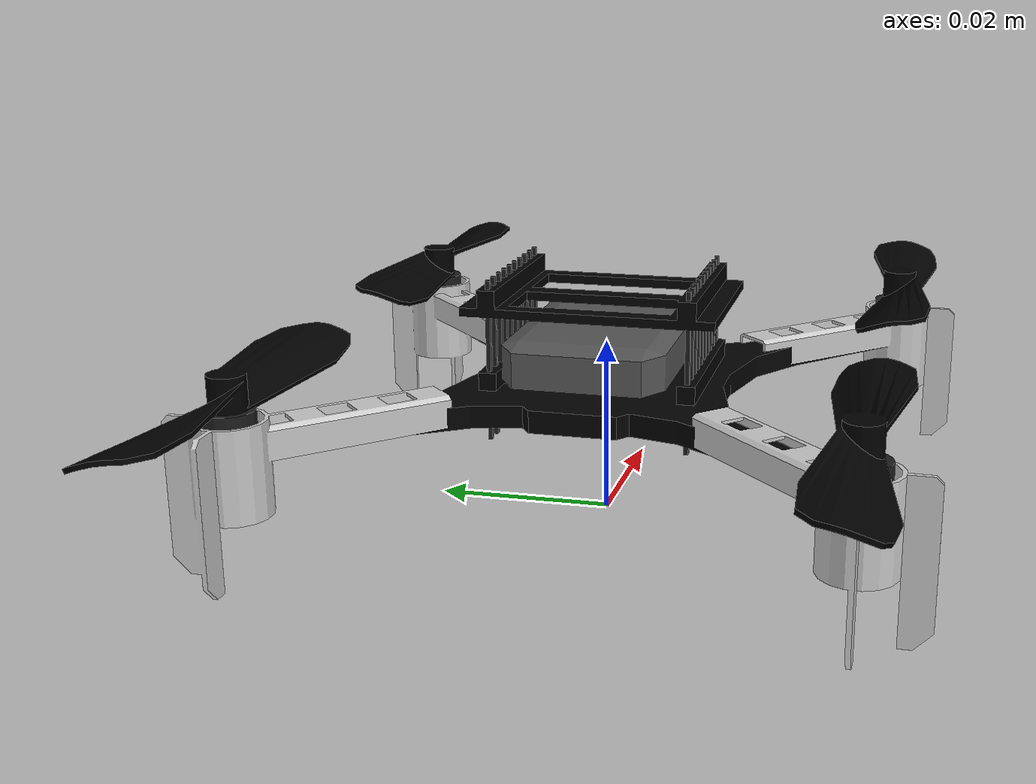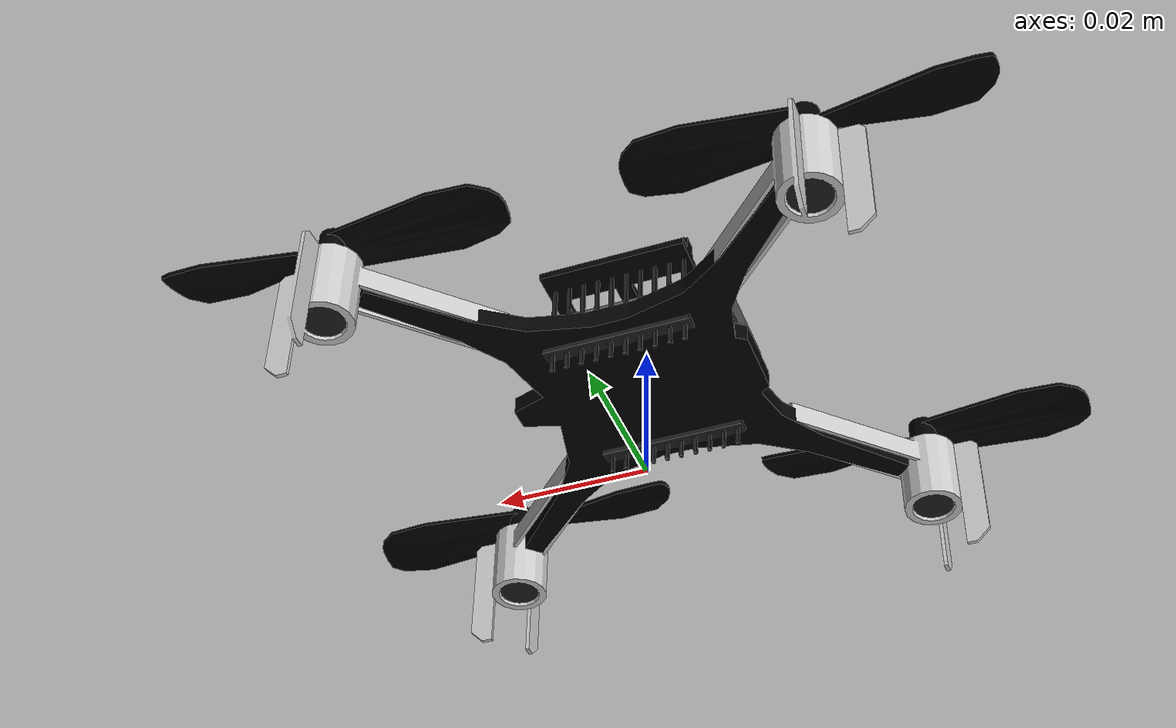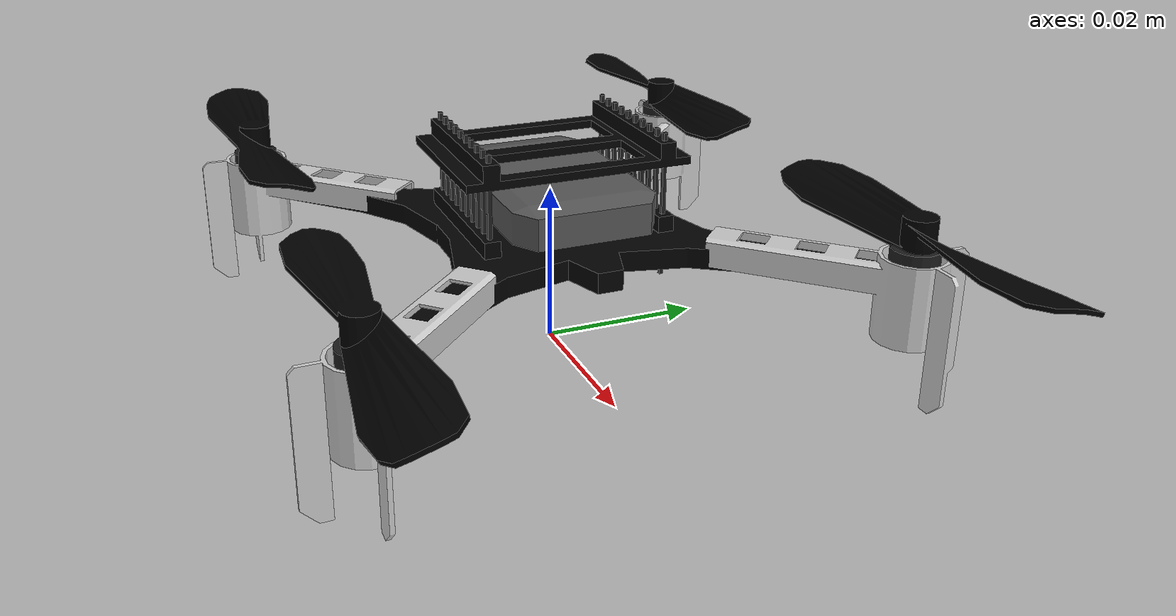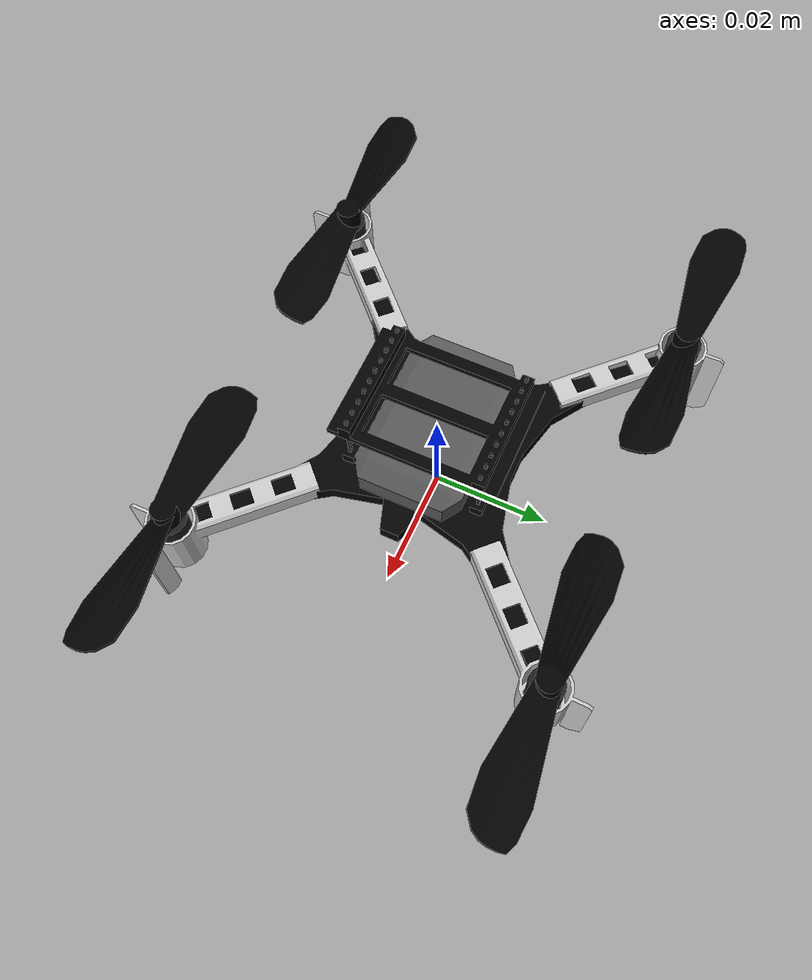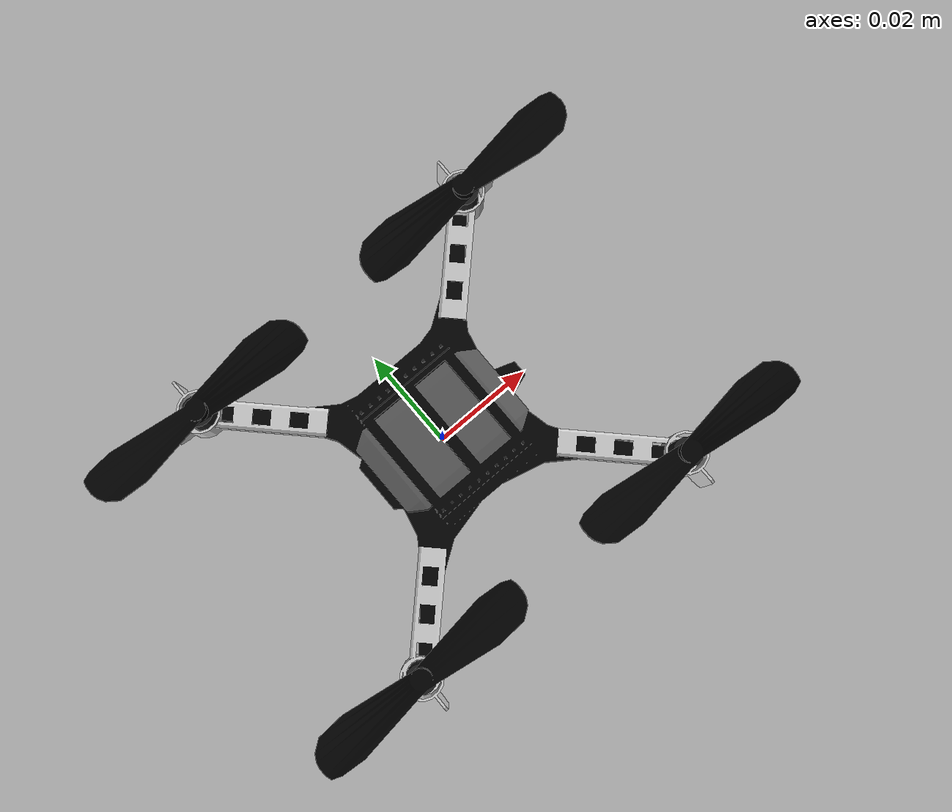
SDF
<?xml version="1.0" ?>

<sdf version="1.8">
  <model name="crazyflie">
    <link name="crazyflie/body">
      <pose> 0 0 17.425E-3 0 0 0</pose>
      <gravity>false</gravity>
      <kinematic>true</kinematic>
      <inertial>
        <mass>0.025</mass>
        <inertia>
          <ixx>16.571710E-06</ixx>
          <iyy>16.655602E-06</iyy>
          <izz>29.261652E-06</izz>
          <ixy>0.830806E-06</ixy>
          <ixz>0.718277E-06</ixz>
          <iyz>1.800197E-06</iyz>
        </inertia>
      </inertial>

      <visual name="crazyflie/body_visual">
        <geometry>
          <mesh>
            <uri>../../../meshes/collada_files/cf2_assembly.dae</uri>
          </mesh>
        </geometry>
      </visual>

      <sensor name="imu_sensor" type="imu">
        <plugin filename="gz-sim-imu-system" name="gz::sim::systems::Imu"/>
        <topic>/crazyflie/imu/data</topic>
        <update_rate>100</update_rate>
        <always_on>true</always_on>
        <visualize>false</visualize>
        <pose>0 0 0 0 0 0</pose>
        <ignition_frame_id>imu_link</ignition_frame_id>
        <imu>
          <angular_velocity>
            <x>
              <noise type="gaussian">
                <mean>0.0</mean>
                <stddev>2e-4</stddev>
                <bias_mean>7.5e-06</bias_mean>
                <bias_stddev>8e-07</bias_stddev>
              </noise>
            </x>
            <y>
              <noise type="gaussian">
                <mean>0.0</mean>
                <stddev>2e-4</stddev>
                <bias_mean>7.5e-06</bias_mean>
                <bias_stddev>8e-07</bias_stddev>
              </noise>
            </y>
            <z>
              <noise type="gaussian">
                <mean>0.0</mean>
                <stddev>2e-4</stddev>
                <bias_mean>7.5e-06</bias_mean>
                <bias_stddev>8e-07</bias_stddev>
              </noise>
            </z>
          </angular_velocity>
          <linear_acceleration>
            <x>
              <noise type="gaussian">
                <mean>0.0</mean>
                <stddev>1.7e-2</stddev>
                <bias_mean>0.1</bias_mean>
                <bias_stddev>0.001</bias_stddev>
              </noise>
            </x>
            <y>
              <noise type="gaussian">
                <mean>0.0</mean>
                <stddev>1.7e-2</stddev>
                <bias_mean>0.1</bias_mean>
                <bias_stddev>0.001</bias_stddev>
              </noise>
            </y>
            <z>
              <noise type="gaussian">
                <mean>0.0</mean>
                <stddev>1.7e-2</stddev>
                <bias_mean>0.1</bias_mean>
                <bias_stddev>0.001</bias_stddev>
              </noise>
            </z>
          </linear_acceleration>
        </imu>
      </sensor>

      <light name="front_spotlight" type="spot">
        <pose>0.1 0 0 0 0 0</pose>
        <diffuse>1.0 1.0 1.0 1.0</diffuse>
        <specular>1.0 1.0 1.0 1.0</specular>
        <attenuation>
          <range>50</range>
          <constant>0.1</constant>
          <linear>0.01</linear>
          <quadratic>0.001</quadratic>
        </attenuation>
        <direction>1 0 0</direction>
        <spot>
          <inner_angle>0.5</inner_angle>
          <outer_angle>1.0</outer_angle>
          <falloff>1.0</falloff>
        </spot>
        <cast_shadows>true</cast_shadows>
        <visualize>false</visualize>
      </light>

      <light name="bottom_spotlight" type="spot">
        <pose>0 0 -0.05 0 1.57 0</pose>
        <diffuse>1 1 1 1</diffuse>
        <specular>1 1 1 1</specular>
        <attenuation>
          <range>30</range>
          <constant>0.1</constant>
          <linear>0.01</linear>
          <quadratic>0.001</quadratic>
        </attenuation>
        <direction>1 0 0</direction>
        <spot>
          <inner_angle>1.2</inner_angle>
          <outer_angle>1.6</outer_angle>
          <falloff>1.0</falloff>
        </spot>
        <cast_shadows>true</cast_shadows>
        <visualize>false</visualize>
      </light>

      <sensor name="bottom_camera" type="camera">
        <pose>0 0 -0.05 0 1.57 0</pose>
        <camera>

          <horizontal_fov>1.7977</horizontal_fov>
          <image>
            <width>640</width>
            <height>400</height>
            <format>L8</format>
          </image>
          <clip>
            <near>0.1</near>
            <far>100</far>
          </clip>
          <lens>

            <type>equidistant</type>
            <scale_to_hfov>true</scale_to_hfov>

            <intrinsics>
              <fx>253.7</fx>
              <fy>253.7</fy>
              <cx>320.0</cx>
              <cy>200.0</cy>
              <skew>0.0</skew>
            </intrinsics>
          </lens>
        </camera>
        <always_on>1</always_on>
        <update_rate>30</update_rate>
        <visualize>true</visualize>
        <topic>/crazyflie/camera/bottom</topic>
        <ignition_frame_id>bottom_camera_link</ignition_frame_id>
      </sensor>

      <sensor name="third_person_camera" type="camera">

        <pose>-0.8 0 0.35 0 0.3 0</pose>
        <camera>
          <horizontal_fov>1.57</horizontal_fov>
          <image>
            <width>640</width>
            <height>480</height>
            <format>R8G8B8</format>
          </image>
          <clip>
            <near>0.1</near>
            <far>100</far>
          </clip>
        </camera>
        <always_on>1</always_on>
        <update_rate>30</update_rate>
        <visualize>true</visualize>
        <topic>/crazyflie/camera/third_person</topic>
        <ignition_frame_id>third_person_camera_link</ignition_frame_id>
      </sensor>

      <sensor name="depth_front" type="gpu_lidar">
        <pose>0.1 0 0 0 0 0</pose>
        <update_rate>15</update_rate>
        <ray>
          <scan>
            <horizontal>
              <samples>8</samples>
              <min_angle>-0.3927</min_angle>
              <max_angle>0.3927</max_angle>
            </horizontal>
            <vertical>
              <samples>8</samples>
              <min_angle>-0.3927</min_angle>
              <max_angle>0.3927</max_angle>
            </vertical>
          </scan>
          <range>
            <min>0.02</min>
            <max>10.0</max>
            <resolution>0.001</resolution>
          </range>
          <noise>
            <type>gaussian</type>
            <mean>0.0</mean>
            <stddev>0.01</stddev>
          </noise>
          <visibility_mask>4294967295</visibility_mask>
        </ray>
        <always_on>true</always_on>
        <topic>/crazyflie/depth_camera/front</topic>
        <visualize>false</visualize>
        <gz_frame_id>front_depth_link</gz_frame_id>
      </sensor>

      <sensor name="depth_back" type="gpu_lidar">
        <pose>-0.1 0 0 0 0 3.14159</pose>
        <update_rate>15</update_rate>
        <ray>
          <scan>
            <horizontal>
              <samples>8</samples>
              <min_angle>-0.3927</min_angle>
              <max_angle>0.3927</max_angle>
            </horizontal>
            <vertical>
              <samples>8</samples>
              <min_angle>-0.3927</min_angle>
              <max_angle>0.3927</max_angle>
            </vertical>
          </scan>
          <range>
            <min>0.02</min>
            <max>10.0</max>
            <resolution>0.001</resolution>
          </range>
          <noise>
            <type>gaussian</type>
            <mean>0.0</mean>
            <stddev>0.01</stddev>
          </noise>
          <visibility_mask>4294967295</visibility_mask>
        </ray>
        <always_on>true</always_on>
        <topic>/crazyflie/depth_camera/back</topic>
        <visualize>false</visualize>
        <gz_frame_id>back_depth_link</gz_frame_id>
      </sensor>

      <sensor name="depth_left" type="gpu_lidar">
        <pose>0 0.1 0 0 0 1.57</pose>
        <update_rate>15</update_rate>
        <ray>
          <scan>
            <horizontal>
              <samples>8</samples>
              <min_angle>-0.3927</min_angle>
              <max_angle>0.3927</max_angle>
            </horizontal>
            <vertical>
              <samples>8</samples>
              <min_angle>-0.3927</min_angle>
              <max_angle>0.3927</max_angle>
            </vertical>
          </scan>
          <range>
            <min>0.02</min>
            <max>10.0</max>
            <resolution>0.001</resolution>
          </range>
          <noise>
            <type>gaussian</type>
            <mean>0.0</mean>
            <stddev>0.01</stddev>
          </noise>
          <visibility_mask>4294967295</visibility_mask>
        </ray>
        <always_on>true</always_on>
        <topic>/crazyflie/depth_camera/left</topic>
        <visualize>false</visualize>
        <gz_frame_id>left_depth_link</gz_frame_id>
      </sensor>

      <sensor name="depth_right" type="gpu_lidar">
        <pose>0 -0.1 0 0 0 -1.57</pose>
        <update_rate>15</update_rate>
        <ray>
          <scan>
            <horizontal>
              <samples>8</samples>
              <min_angle>-0.3927</min_angle>
              <max_angle>0.3927</max_angle>
            </horizontal>
            <vertical>
              <samples>8</samples>
              <min_angle>-0.3927</min_angle>
              <max_angle>0.3927</max_angle>
            </vertical>
          </scan>
          <range>
            <min>0.02</min>
            <max>10.0</max>
            <resolution>0.001</resolution>
          </range>
          <noise>
            <type>gaussian</type>
            <mean>0.0</mean>
            <stddev>0.01</stddev>
          </noise>
          <visibility_mask>4294967295</visibility_mask>
        </ray>
        <always_on>true</always_on>
        <topic>/crazyflie/depth_camera/right</topic>
        <visualize>false</visualize>
        <gz_frame_id>right_depth_link</gz_frame_id>
      </sensor>

      <sensor name="depth_top" type="gpu_lidar">
        <pose>0 0 0.05 0 -1.57 0</pose>
        <update_rate>15</update_rate>
        <ray>
          <scan>
            <horizontal>
              <samples>8</samples>
              <min_angle>-0.3927</min_angle>
              <max_angle>0.3927</max_angle>
            </horizontal>
            <vertical>
              <samples>8</samples>
              <min_angle>-0.3927</min_angle>
              <max_angle>0.3927</max_angle>
            </vertical>
          </scan>
          <range>
            <min>0.02</min>
            <max>10.0</max>
            <resolution>0.001</resolution>
          </range>
          <noise>
            <type>gaussian</type>
            <mean>0.0</mean>
            <stddev>0.01</stddev>
          </noise>
          <visibility_mask>4294967295</visibility_mask>
        </ray>
        <always_on>true</always_on>
        <topic>/crazyflie/depth_camera/top</topic>
        <visualize>false</visualize>
        <gz_frame_id>top_depth_link</gz_frame_id>
      </sensor>

      <sensor name="depth_bottom" type="gpu_lidar">
        <pose>0 0 -0.05 0 1.57 0</pose>
        <update_rate>15</update_rate>
        <ray>
          <scan>
            <horizontal>
              <samples>8</samples>
              <min_angle>-0.3927</min_angle>
              <max_angle>0.3927</max_angle>
            </horizontal>
            <vertical>
              <samples>8</samples>
              <min_angle>-0.3927</min_angle>
              <max_angle>0.3927</max_angle>
            </vertical>
          </scan>
          <range>
            <min>0.02</min>
            <max>10.0</max>
            <resolution>0.001</resolution>
          </range>
          <noise>
            <type>gaussian</type>
            <mean>0.0</mean>
            <stddev>0.01</stddev>
          </noise>
          <visibility_mask>4294967295</visibility_mask>
        </ray>
        <always_on>true</always_on>
        <topic>/crazyflie/depth_camera/bottom</topic>
        <visualize>false</visualize>
        <gz_frame_id>bottom_depth_link</gz_frame_id>
      </sensor>

      <sensor name="height_lidar" type="gpu_lidar">
        <pose>0 0 -0.05 0 1.57 0</pose>
        <topic>/crazyflie/lidar/height</topic>
        <update_rate>50</update_rate>
        <lidar>
          <scan>
            <horizontal>
              <samples>1</samples>
              <resolution>1</resolution>
              <min_angle>0.0</min_angle>
              <max_angle>0.0</max_angle>
            </horizontal>
            <vertical>
              <samples>1</samples>
              <min_angle>0.0</min_angle>
              <max_angle>0.0</max_angle>
            </vertical>
          </scan>
          <range>
            <min>0.05</min>
            <max>18</max>
            <resolution>0.01</resolution>
          </range>
          <noise>
            <type>gaussian</type>
            <mean>0.0</mean>
            <stddev>0.01</stddev>
          </noise>
          <visibility_mask>4294967295</visibility_mask>
        </lidar>
        <always_on>1</always_on>
        <visualize>true</visualize>
        <ignition_frame_id>height_lidar_link</ignition_frame_id>
      </sensor>
    </link>
    <link name="crazyflie/m1_prop">
      <pose>0.031 -0.031 0.021 0 0 0</pose>
    <gravity>false</gravity>
    <kinematic>true</kinematic>
      <inertial>
        <mass>0.0008</mass>
        <inertia>
          <ixx>8.33333E-09</ixx>
          <iyy>1.08333E-07</iyy>
          <izz>1.13333E-07</izz>
        </inertia>
      </inertial>
      <visual name="crazyflie/m1_visual">
        <geometry>
          <mesh>
            <uri>../../../meshes/collada_files/ccw_prop.dae</uri>
          </mesh>
        </geometry>
      </visual>
    </link>
    <link name="crazyflie/m2_prop">
      <pose>-0.031 -0.031 0.021 0 0 0</pose>
    <gravity>false</gravity>
    <kinematic>true</kinematic>
      <inertial>
        <mass>0.0008</mass>
        <inertia>
          <ixx>8.33333E-09</ixx>
          <iyy>1.08333E-07</iyy>
          <izz>1.13333E-07</izz>
        </inertia>
      </inertial>
      <visual name="crazyflie/m2_visual">
        <geometry>
          <mesh>
            <uri>../../../meshes/collada_files/cw_prop.dae</uri>
          </mesh>
        </geometry>
      </visual>
    </link>
    <link name="crazyflie/m3_prop">
      <pose>-0.031 0.031 0.021 0 0 0</pose>
    <gravity>false</gravity>
    <kinematic>true</kinematic>
      <inertial>
        <mass>0.0008</mass>
        <inertia>
          <ixx>8.33333E-09</ixx>
          <iyy>1.08333E-07</iyy>
          <izz>1.13333E-07</izz>
        </inertia>
      </inertial>
      <visual name="crazyflie/m3_visual">
        <geometry>
          <mesh>
            <uri>../../../meshes/collada_files/ccw_prop.dae</uri>
          </mesh>
        </geometry>
      </visual>
    </link>
    <link name="crazyflie/m4_prop">
      <pose>0.031 0.031 0.021 0 0 0</pose>
    <gravity>false</gravity>
    <kinematic>true</kinematic>
      <inertial>
        <mass>0.0008</mass>
        <inertia>
          <ixx>8.33333E-09</ixx>
          <iyy>1.08333E-07</iyy>
          <izz>1.13333E-07</izz>
        </inertia>
      </inertial>
      <visual name="crazyflie/m4_visual">
        <geometry>
          <mesh>
            <uri>../../../meshes/collada_files/cw_prop.dae</uri>
          </mesh>
        </geometry>
      </visual>
    </link>
    <joint name="crazyflie/m1_joint" type="revolute">
      <child>crazyflie/m1_prop</child>
      <parent>crazyflie/body</parent>
      <axis>
        <xyz>0 0 1</xyz>
      </axis>
    </joint>
    <joint name="crazyflie/m2_joint" type="revolute">
      <child>crazyflie/m2_prop</child>
      <parent>crazyflie/body</parent>
      <axis>
        <xyz>0 0 1</xyz>
      </axis>
    </joint>
    <joint name="crazyflie/m3_joint" type="revolute">
      <child>crazyflie/m3_prop</child>
      <parent>crazyflie/body</parent>
      <axis>
        <xyz>0 0 1</xyz>
      </axis>
    </joint>
    <joint name="crazyflie/m4_joint" type="revolute">
      <child>crazyflie/m4_prop</child>
      <parent>crazyflie/body</parent>
      <axis>
        <xyz>0 0 1</xyz>
      </axis>
    </joint>
    <plugin
      filename="gz-sim-multicopter-motor-model-system"
      name="gz::sim::systems::MulticopterMotorModel">
      <robotNamespace>crazyflie</robotNamespace>
      <jointName>crazyflie/m1_joint</jointName>
      <linkName>crazyflie/m1_prop</linkName>
      <turningDirection>ccw</turningDirection>
      <maxRotVelocity>2618</maxRotVelocity>
      <motorConstant>0.0</motorConstant>
      <momentConstant>0.0</momentConstant>
      <rotorDragCoefficient>0.0</rotorDragCoefficient>
      <rollingMomentCoefficient>0.0</rollingMomentCoefficient>
      <rotorVelocitySlowdownSim>20</rotorVelocitySlowdownSim>
      <commandSubTopic>command/motor_speed</commandSubTopic>
      <motorSpeedPubTopic>motor_speed/0</motorSpeedPubTopic>
      <motorNumber>0</motorNumber>
      <motorType>velocity</motorType>
    </plugin>
    <plugin
      filename="gz-sim-multicopter-motor-model-system"
      name="gz::sim::systems::MulticopterMotorModel">
      <robotNamespace>crazyflie</robotNamespace>
      <jointName>crazyflie/m2_joint</jointName>
      <linkName>crazyflie/m2_prop</linkName>
      <turningDirection>cw</turningDirection>
      <maxRotVelocity>2618</maxRotVelocity>
      <motorConstant>0.0</motorConstant>
      <momentConstant>0.0</momentConstant>
      <rotorDragCoefficient>0.0</rotorDragCoefficient>
      <rollingMomentCoefficient>0.0</rollingMomentCoefficient>
      <rotorVelocitySlowdownSim>20</rotorVelocitySlowdownSim>
      <commandSubTopic>command/motor_speed</commandSubTopic>
      <motorSpeedPubTopic>motor_speed/1</motorSpeedPubTopic>
      <motorNumber>1</motorNumber>
      <motorType>velocity</motorType>
    </plugin>
    <plugin
      filename="gz-sim-multicopter-motor-model-system"
      name="gz::sim::systems::MulticopterMotorModel">
      <robotNamespace>crazyflie</robotNamespace>
      <jointName>crazyflie/m3_joint</jointName>
      <linkName>crazyflie/m3_prop</linkName>
      <turningDirection>ccw</turningDirection>
      <maxRotVelocity>2618</maxRotVelocity>
      <motorConstant>0.0</motorConstant>
      <momentConstant>0.0</momentConstant>
      <rotorDragCoefficient>0.0</rotorDragCoefficient>
      <rollingMomentCoefficient>0.0</rollingMomentCoefficient>
      <rotorVelocitySlowdownSim>20</rotorVelocitySlowdownSim>
      <commandSubTopic>command/motor_speed</commandSubTopic>
      <motorSpeedPubTopic>motor_speed/2</motorSpeedPubTopic>
      <motorNumber>2</motorNumber>
      <motorType>velocity</motorType>
    </plugin>
    <plugin
      filename="gz-sim-multicopter-motor-model-system"
      name="gz::sim::systems::MulticopterMotorModel">
      <robotNamespace>crazyflie</robotNamespace>
      <jointName>crazyflie/m4_joint</jointName>
      <linkName>crazyflie/m4_prop</linkName>
      <turningDirection>cw</turningDirection>
      <maxRotVelocity>2618</maxRotVelocity>
      <motorConstant>0.0</motorConstant>
      <momentConstant>0.0</momentConstant>
      <rotorDragCoefficient>0.0</rotorDragCoefficient>
      <rollingMomentCoefficient>0.0</rollingMomentCoefficient>
      <rotorVelocitySlowdownSim>20</rotorVelocitySlowdownSim>
      <commandSubTopic>command/motor_speed</commandSubTopic>
      <motorSpeedPubTopic>motor_speed/3</motorSpeedPubTopic>
      <motorNumber>3</motorNumber>
      <motorType>velocity</motorType>
    </plugin>

    <plugin
      filename="libignition-gazebo-velocity-control-system.so"
      name="ignition::gazebo::systems::VelocityControl">
      <topic>/crazyflie/cmd_vel</topic>
    </plugin>

    <plugin
      filename="libignition-gazebo-odometry-publisher-system.so"
      name="ignition::gazebo::systems::OdometryPublisher">
      <dimensions>3</dimensions>
      <odom_publish_frequency>100</odom_publish_frequency>
    </plugin>
  </model>
</sdf>
